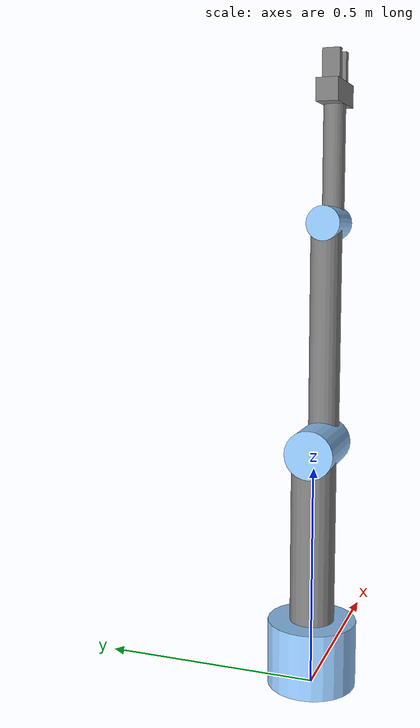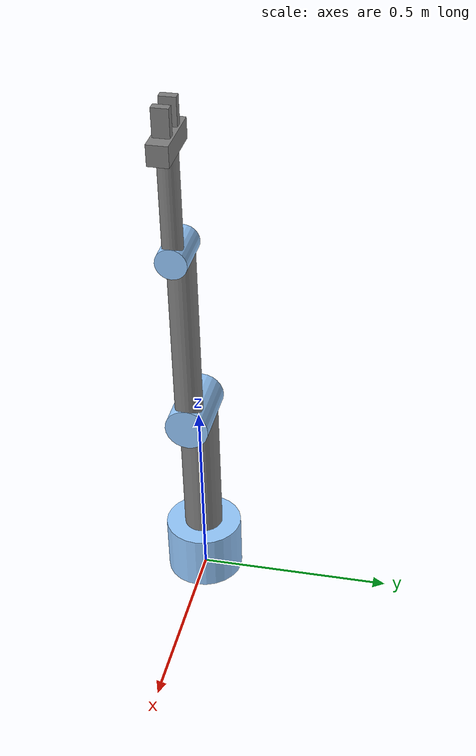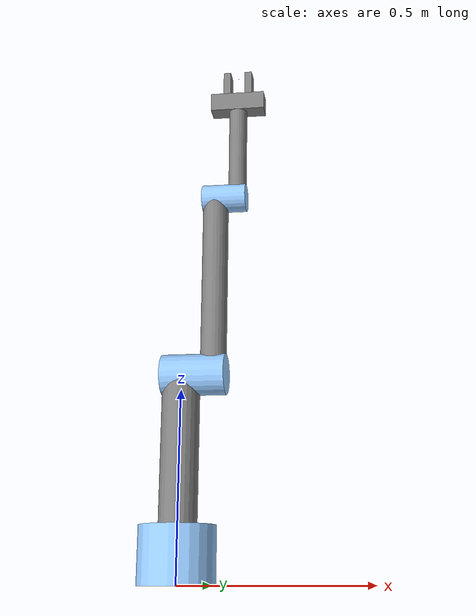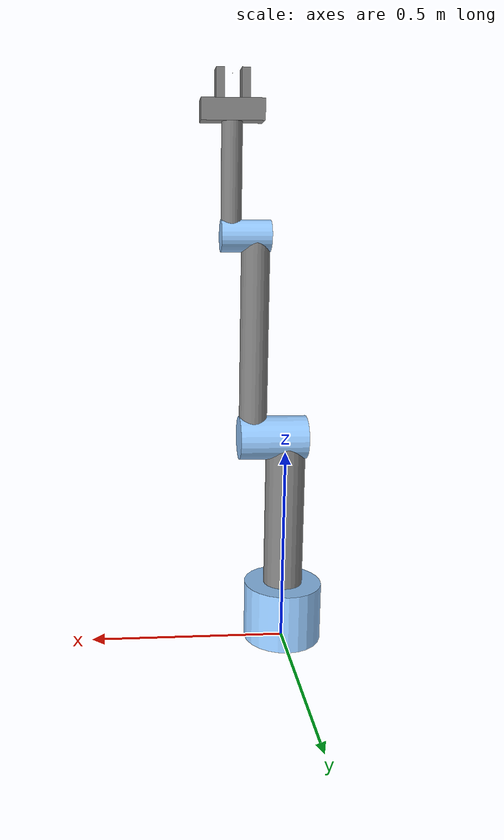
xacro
<?xml version="1.0"?>

<!-- Make the namespace of the robot-->
<robot xmlns:xacro="http://www.ros.org/wiki/xacro" name="my_bot">
    <!--Define constants-->
    <xacro:property name="link_type" value="cuboidal" />
    <xacro:property name="M_PI" value="3.14159"/>
    <xacro:property name="mass_1" value="20" />
    <xacro:property name="mass_2" value="5" />
    <xacro:property name="mass_3" value="3" />
    <xacro:property name="mass_4" value="3" />
    <xacro:property name="mass_5" value="1" />
    <xacro:property name="mass_6" value="0.2" />
    <xacro:property name="radius_1" value="0.1" />  <!--base_link radius-->
    <xacro:property name="radius_2" value="0.05" /> <!--link_1 radius-->
    <xacro:property name="radius_3" value="0.035" /><!--link_2 ra   dius-->
    <xacro:property name="radius_4" value="0.025" /><!--link_3 radius-->
    <xacro:property name="radius_5" value="0.025" /><!--gripper base redius/width-->
    <xacro:property name="radius_6" value="0.02" /> <!--finger radius/length-->

    <xacro:property name="length_1" value="0.15" /> <!--base_link length-->
    <xacro:property name="length_2" value="0.4" />  <!--link_1 length-->
    <xacro:property name="length_3" value="0.5" />  <!--link_2 length-->
    <xacro:property name="length_4" value="0.3" /> <!--link_3 length-->
    <xacro:property name="length_5" value="0.15" /> <!--gripper base length-->
    <xacro:property name="length_6" value="0.07" /> <!--finger length-->

    <!--Define Rviz colors-->
    <material name="Black">
        <color rgba="0.0 0.0 0.0 1.0"/>
    </material>
    <material name="Red">
        <color rgba="0.8 0.0 0.0 1.0"/>
    </material>
    <material name="Blue">
        <color rgba="0.0 0.0 1.0 1.0"/>
    </material>
    <material name="LightBlue">
        <color rgba="0.589 0.793 1.0 1.0"/>
    </material>
    <material name="Grey">
        <color rgba="0.5 0.5 0.5 1.0"/>
    </material>
    <material name="White">
        <color rgba="1.0 1.0 1.0 1.0"/>
    </material>

    <!-- macros for inertia -->
    <xacro:macro name="inertial_block" params="mass length radius">
        <inertial>
        <origin xyz="0 0 ${length/2}" rpy="0 0 0"/>
        <mass value="${mass}"/>
        <inertia
            ixx="${mass / 12.0 * (2*radius*2*radius + length*length)}" ixy="0.0" ixz="0.0"
            iyy="${mass / 12.0 * (length*length + 2*radius*2*radius)}" iyz="0.0"
            izz="${mass / 12.0 * (2*radius*2*radius + 2*radius*2*radius)}" />
    </inertial>
    </xacro:macro>

    <!-- macros for transmission -->
    <xacro:macro name="transmission_block" params="joint_name">
	  <transmission name="tran1">
	    <type>transmission_interface/SimpleTransmission</type>
	    <joint name="${joint_name}">
	      <hardwareInterface>hardware_interface/PositionJointInterface</hardwareInterface>
	    </joint>
	    <actuator name="motor1">
	      <hardwareInterface>hardware_interface/PositionJointInterface</hardwareInterface>
	      <mechanicalReduction>1</mechanicalReduction>
	    </actuator>
	  </transmission>
   </xacro:macro>

    <!--Define Gazebo colors-->
    <xacro:macro name="gazebo_grey_link_color_block" params="link_name">
    <gazebo reference="${link_name}">
    <visual>
      <material>
        <ambient>0.5 0.5 0.5 1.0</ambient>
        <diffuse>0.56666695 0.56666695 0.56666695 1.0</diffuse>
        <specular>0.6000003 0.6000003 0.6000003 1.0</specular>
      </material>
    </visual>
    </gazebo>
  </xacro:macro>

  <xacro:macro name="gazebo_blue_link_color_block" params="link_name">
    <gazebo reference="${link_name}">
    <visual>
      <material>
        <ambient>0.589 0.793 1.0 1.0</ambient>
        <diffuse>0.56666695 0.56666695 0.56666695 1.0</diffuse>
        <specular>0.6000003 0.6000003 0.6000003 1.0</specular>
      </material>
    </visual>
    </gazebo>
  </xacro:macro>

    <!--world link-->
    <link name="world"/>
    <joint name="world_joint" type="fixed">
        <origin xyz="0.0 0.0 0.0" rpy="0.0 0.0 0.0"/>
        <parent link="world"/>
        <child link="base_link"/>
    </joint>

    <!--base_link-->
    <link name="base_link">
        <xacro:inertial_block mass="${mass_1}" length="${length_1}" radius="${radius_1}"/>
        <visual>
            <origin xyz="0.0 0.0 ${length_1/2.0}" rpy="0.0 0.0 0.0"/>
            <geometry>
                <cylinder radius="${radius_1}" length="${length_1}"/>
            </geometry>
            <material name="LightBlue"/>
        </visual>

        <collision>
            <origin xyz="0.0 0.0 ${length_1/2.0}" rpy="0.0 0.0 0.0"/>
            <geometry>
                <cylinder radius="${radius_1}" length="${length_1}"/>
            </geometry>
        </collision>
    </link>

    <xacro:gazebo_blue_link_color_block link_name="base_link"/>

    <joint name="joint_1" type="revolute">
        <origin xyz="0.0 0.0 ${length_1}" rpy="0.0 0.0 0.0"/>
        <parent link="base_link"/>
        <child link="link_1"/>
        <axis xyz="0.0 0.0 1"/>
        <limit lower="${-M_PI}" upper="${M_PI * 2}" effort="300.0" velocity="1.0"/>
    </joint>

    <!--link_1-->
    <link name="link_1">
        <xacro:inertial_block mass="${mass_2}" length="${length_2}" radius="${radius_2}"/>
        <visual>
            <origin xyz="0.0 0.0 ${length_2/2.0}" rpy="0.0 0.0 0.0"/>
            <geometry>
                <cylinder radius="${radius_2}" length="${length_2}"/>
            </geometry>
            <material name="Grey"/>
        </visual>

        <collision>
            <origin xyz="0.0 0.0 ${length_2/2.0}" rpy="0.0 0.0 0.0"/>
            <geometry>
                <cylinder radius="${radius_2}" length="${length_2}"/>
            </geometry>
        </collision>
    </link>

    <xacro:gazebo_grey_link_color_block link_name="link_1"/>

    <link name="link_1_endlink">
        <xacro:inertial_block mass="${mass_2/3.0}" length="${2*radius_2+2*radius_3}" radius="${radius_2}"/>
        <visual>
            <origin xyz="0.0 0.0 ${(2*radius_2+2*radius_3)/2.0}" rpy="0.0 0.0 0.0"/>
            <geometry>
                <cylinder radius="${radius_2*1.1}" length="${2*radius_2+2*radius_3}"/>
            </geometry>
            <material name="LightBlue"/>
        </visual>

        <collision>
            <origin xyz="0.0 0.0 ${(2*radius_2+2*radius_3)/2.0}" rpy="0.0 0.0 0.0"/>
            <geometry>
                <cylinder radius="${radius_2*1.1}" length="${2*radius_2+2*radius_3}"/>
            </geometry>
        </collision>

    </link>

    <xacro:gazebo_blue_link_color_block link_name="link_1_endlink"/>

    <joint name="link_1_endjoint" type="fixed">
        <origin xyz="${-radius_2} 0.0 ${length_2 - 0.01}" rpy="0.0 ${M_PI/2.0} 0.0"/>
        <parent link="link_1"/>
        <child link="link_1_endlink"/>
    </joint>

    <gazebo reference="link_1_endjoint">
        <disableFixedJointLumping>true</disableFixedJointLumping>
        <preserveFixedJoint>true</preserveFixedJoint>
    </gazebo>

    <joint name="joint_2" type="revolute">
        <origin xyz="${radius_2 + radius_3} 0.0 ${length_2}" rpy="0.0 0.0 0.0"/>
        <parent link="link_1"/>
        <child link="link_2"/>
        <axis xyz="1.0 0.0 0.0"/>
        <limit lower="${-M_PI}" upper="${M_PI * 2}" effort="300.0" velocity="1.0"/>
    </joint>

    <!--link_2-->
    <link name="link_2">
        <xacro:inertial_block mass="${mass_3}" length="${length_3}" radius="${radius_3}"/>
        <visual>
            <origin xyz="0.0 0.0 ${length_3/2.0}" rpy="0.0 0.0 0.0"/>
            <geometry>
                <cylinder radius="${radius_3}" length="${length_3}"/>
            </geometry>
            <material name="Grey"/>
        </visual>

        <collision>
            <origin xyz="0.0 0.0 ${length_3/2.0}" rpy="0.0 0.0 0.0"/>
            <geometry>
                <cylinder radius="${radius_3}" length="${length_3}"/>
            </geometry>
        </collision>
    </link>

    <xacro:gazebo_grey_link_color_block link_name="link_2"/>

    <link name="link_2_endlink">
        <xacro:inertial_block mass="${mass_3/3.0}" length="${2*radius_3+2*radius_4}" radius="${radius_3}"/>
        <visual>
            <origin xyz="0.0 0.0 ${(2*radius_3+2*radius_4)/2.0}" rpy="0.0 0.0 0.0"/>
            <geometry>
                <cylinder radius="${radius_3*1.1}" length="${2*radius_3+2*radius_4}"/>
            </geometry>
            <material name="LightBlue"/>
        </visual>

        <collision>
            <origin xyz="0.0 0.0 ${(2*radius_3+2*radius_4)/2.0}" rpy="0.0 0.0 0.0"/>
            <geometry>
                <cylinder radius="${radius_3*1.1}" length="${2*radius_3+2*radius_4}"/>
            </geometry>
        </collision>
    </link>

    <xacro:gazebo_blue_link_color_block link_name="link_2_endlink"/>

    <joint name="link_2_endjoint" type="fixed">
        <origin xyz="${-radius_3} 0.0 ${length_3 - 0.01}" rpy="0.0 ${M_PI/2.0} 0.0"/>
        <parent link="link_2"/>
        <child link="link_2_endlink"/>
    </joint>

    <gazebo reference="link_2_endjoint">
        <disableFixedJointLumping>true</disableFixedJointLumping>
        <preserveFixedJoint>true</preserveFixedJoint>
    </gazebo>

    <joint name="joint_3" type="revolute">
        <origin xyz="${radius_3 + radius_4} 0.0 ${length_3 - radius_3}" rpy="0.0 0.0 0.0"/>
        <parent link="link_2"/>
        <child link="link_3"/>
        <axis xyz="1.0 0.0 0.0"/>
        <limit lower="${-M_PI}" upper="${M_PI * 2}" effort="300.0" velocity="1.0"/>
    </joint>

    <!--link_3-->
    <link name="link_3">
        <xacro:inertial_block mass="${mass_4}" length="${length_4}" radius="${radius_4}"/>
        <visual>
            <origin xyz="0.0 0.0 ${length_4/2.0}" rpy="0.0 0.0 0.0"/>
            <geometry>
                <cylinder radius="${radius_4}" length="${length_4}"/>
            </geometry>
            <material name="Grey"/>
        </visual>

        <collision>
            <origin xyz="0.0 0.0 ${length_4/2.0}" rpy="0.0 0.0 0.0"/>
            <geometry>
                <cylinder radius="${radius_4}" length="${length_4}"/>
            </geometry>
        </collision>
    </link>

    <xacro:gazebo_grey_link_color_block link_name="link_3"/>

    <joint name="joint_4" type="revolute">
        <origin xyz="0.0 0.0 ${length_4}" rpy="0.0 0.0 0.0"/>
        <parent link="link_3"/>
        <child link="link_4"/>
        <axis xyz="0.0 0.0 01.0"/>
        <limit lower="${-M_PI}" upper="${M_PI * 2}" effort="300.0" velocity="1.0"/>
    </joint>

    <!--link_4-->
    <link name="link_4">
        <xacro:inertial_block mass="${mass_5}" length="${length_5}" radius="${radius_5}"/>
        <visual>
            <origin xyz="0.0 0.0 ${radius_5/2.0}" rpy="0.0 ${M_PI/2.0} 0.0"/>
            <geometry>
                <box size="${radius_5*2} ${radius_5*2} ${length_5}"/>
            </geometry>
            <material name="Grey"/>
        </visual>

        <collision>
            <origin xyz="0.0 0.0 ${radius_5/2.0}" rpy="0.0 0.0 0.0"/>
            <geometry>
                <box size="${radius_5*2} ${radius_5*2} ${length_5}"/>
            </geometry>
        </collision>
    </link>

    <xacro:gazebo_grey_link_color_block link_name="link_4"/>

    <joint name="gripper_joint_1" type="prismatic">
        <origin xyz="0.0 0.0 ${radius_5 + length_6/2.0}" rpy="0.0 0.0 0.0"/>
        <parent link="link_4"/>
        <child link="gripper_link_1"/>
        <axis xyz="1.0 0.0 0.0"/>
        <limit lower="${radius_6/2.0}" upper="0.05" effort="100.0" velocity="1.0"/>
    </joint>

    <joint name="gripper_joint_2" type="prismatic">
        <origin xyz="0.0 0.0 ${radius_5 + length_6/2.0}" rpy="0.0 0.0 0.0"/>
        <parent link="link_4"/>
        <child link="gripper_link_2"/>
        <axis xyz="1.0 0.0 0.0"/>
        <limit lower="-0.05" upper="${-radius_6/2.0}" effort="100.0" velocity="1.0"/>
    </joint>

    <joint name="gripper_frame_joint" type="fixed">
        <origin xyz="0.0 0.0 ${radius_5*2 + length_6/2 + 0.01}" rpy="0.0 0.0 0.0"/>
        <parent link="link_4"/>
        <child link="gripper_frame_cp"/>
    </joint>
    <!--gripper_link_1-->
    <link name="gripper_link_1">
        <xacro:inertial_block mass="${mass_6}" length="${length_6}" radius="${radius_6}"/>
        <visual>
            <origin xyz="0.0 0.0 ${radius_6/2.0}" rpy="0.0 0.0 0.0"/>
            <geometry>
                <box size="${radius_6} ${radius_6*2} ${length_6}"/>
            </geometry>
            <material name="Grey"/>
        </visual>

        <collision>
            <origin xyz="0.0 0.0 ${radius_6/2.0}" rpy="0.0 0.0 0.0"/>
            <geometry>
                <box size="${radius_6*2} ${radius_6*2} ${length_6}"/>
            </geometry>
        </collision>
    </link>

    <xacro:gazebo_grey_link_color_block link_name="gripper_link_1"/>

    <!--gripper_link_2-->
    <link name="gripper_link_2">
        <xacro:inertial_block mass="${mass_6}" length="${length_6}" radius="${radius_6}"/>
        <visual>
            <origin xyz="0.0 0.0 ${radius_6/2.0}" rpy="0.0 0.0 0.0"/>
            <geometry>
                <box size="${radius_6} ${radius_6*2} ${length_6}"/>
            </geometry>
            <material name="Grey"/>
        </visual>

        <collision>
            <origin xyz="0.0 0.0 ${radius_6/2.0}" rpy="0.0 0.0 0.0"/>
            <geometry>
                <box size="${radius_6*2} ${radius_6*2} ${length_6}"/>
            </geometry>
        </collision>
    </link>

    <xacro:gazebo_grey_link_color_block link_name="gripper_link_2"/>
    <!--gripper_frame_cp-->
    <link name="gripper_frame_cp">
        <xacro:inertial_block mass="${0.001}" length="${0.001}" radius="${0.001}"/>
        <visual>
            <origin xyz="0.0 0.0 0.0" rpy="0.0 0.0 0.0"/>
            <geometry>
                <box size="${0.001} ${0.001} ${0.001}"/>
            </geometry>
            <material name="Grey"/>
        </visual>

        <collision>
            <origin xyz="0.0 0.0 0.0" rpy="0.0 0.0 0.0"/>
            <geometry>
                <box size="${0.001} ${0.001} ${0.001}"/>
            </geometry>
        </collision>
    </link>

    <!-- Transmissions for ros control -->

    <!-- ros_control plugin -->

    <xacro:property name="steer_limlow" value="-3.14"/>
    <xacro:property name="steer_limhigh" value="3.14"/>

    <ros2_control name="GazeboSimSystem" type="system">
        <hardware>
            <plugin>gazebo_ros2_control/GazeboSystem</plugin>
        </hardware>
        <joint name="joint_1">
            <command_interface name = "position">
                <param name="min">${steer_limlow}</param>
                <param name="max">${steer_limhigh}</param>
            </command_interface>
            <state_interface name="position"/>
            <state_interface name="velocity"/>
            <state_interface name="effort"/>
        </joint>

        <joint name="joint_2">
            <command_interface name = "position">
                <param name="min">${steer_limlow}</param>
                <param name="max">${steer_limhigh}</param>
            </command_interface>
            <state_interface name="position"/>
            <state_interface name="velocity"/>
            <state_interface name="effort"/>
        </joint>
        <joint name="joint_3">
            <command_interface name = "position">
                <param name="min">${steer_limlow}</param>
                <param name="max">${steer_limhigh}</param>
            </command_interface>
            <state_interface name="position"/>
            <state_interface name="velocity"/>
            <state_interface name="effort"/>
        </joint>

    </ros2_control>
        <gazebo>
        <plugin name="gazebo_ros2_control" filename="libgazebo_ros2_control.so">
            <parameters>$(find my_bot)/config/joint_position_controller.yaml</parameters>
        </plugin>
    </gazebo>

</robot>
